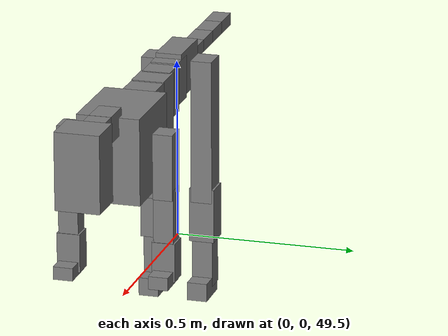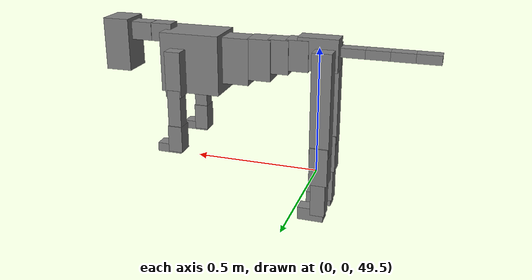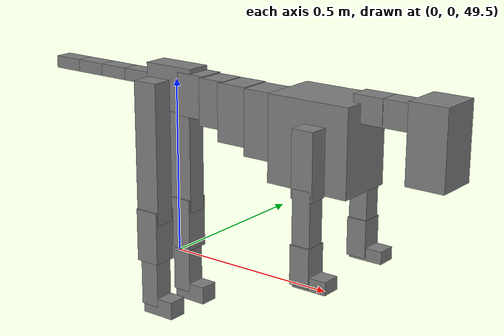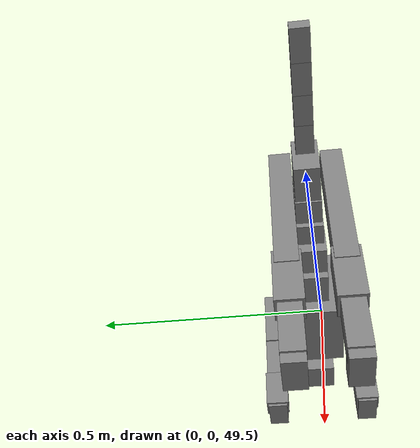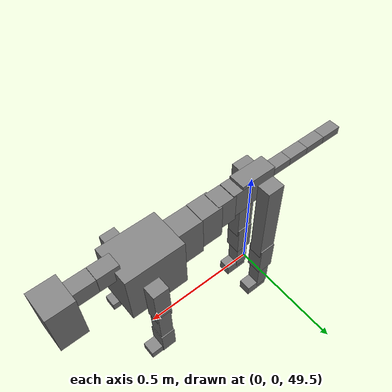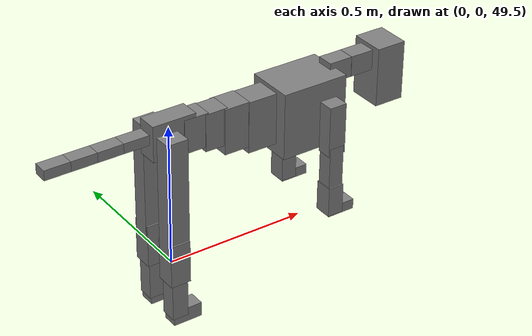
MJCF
<mujoco model="dog">

    <default>
        <joint armature="0.02" stiffness="1" damping="0.2" limited="true"/>
        <geom condim="3" friction="1 0.05 0.05" margin="0.01"/>
        <motor ctrllimited="true" ctrlrange="-1.0 1.0" forcelimited="true" gear="50"/>
    </default>

    <compiler inertiafromgeom="true" angle="radian"/>

    <option timestep="0.016" iterations="50" tolerance="1e-10" solver="Newton" jacobian="dense" cone="pyramidal"/>

    <size nconmax="20000" njmax="60000" nstack="5000000"/>
    <visual>
        <map force="0.1" zfar="30"/>
        <rgba haze="0.15 0.25 0.35 1"/>
        <quality shadowsize="2048"/>
        <global offwidth="800" offheight="800"/>
    </visual>

    <asset>
        <texture type="skybox" builtin="gradient" rgb1="0.3 0.5 0.7" rgb2="0 0 0" width="512" height="512"/>
        <texture name="texplane" type="2d" builtin="checker" rgb1=".2 .3 .4" rgb2=".1 0.15 0.2" width="512" height="512"
                 mark="cross" markrgb=".8 .8 .8"/>
        <texture name="texgeom" type="cube" builtin="flat" mark="cross" width="127" height="1278" rgb1="0.8 0.6 0.4"
                 rgb2="0.8 0.6 0.4" markrgb="1 1 1" random="0.01"/>

        <material name="matplane" reflectance="0.3" texture="texplane" texrepeat="1 1" texuniform="true"/>
        <material name="matgeom" texture="texgeom" texuniform="true" rgba="0.8 0.6 .4 1"/>
    </asset>

    <worldbody>
        <geom name="floor" pos="0 0 0" size="0 0 .25" type="plane" material="matplane" condim="3"/>

        <light directional="false" diffuse=".2 .2 .2" specular="0 0 0" pos="0 0 5" dir="0 0 -1" castshadow="false"/>
        <light mode="targetbodycom" target="torso" directional="false" diffuse=".8 .8 .8" specular="0.3 0.3 0.3"
               pos="0 0 4.0" dir="0 0 -1"/>

        <body name="root" pos="0 0 50">
            <freejoint name="root_1"/>
            <geom type="box" pos="0 0 -0.02" size="0.0774  0.0358  0.063" density="2030"/>

            <body name="spine1" pos="0.054 0 0">
                <joint name="spine1_y" axis="0 1 0" range="0 0.7" limited="true"/>
                <geom type="box" pos="0.02375 0 -0.03" size="0.04375  0.0375  0.05985" density="2030"/>

                <body name="spine2" pos="0.0612 0 0">
                    <joint name="spine2_y" axis="0 1 0" range="-0.15 0.15" limited="true"/>
                    <geom type="box" pos="0.03555  0  -0.04" size="0.04055  0.039  0.06615" density="2030"/>

                    <body name="spine3" pos="0.0730 0 0">
                        <joint name="spine3_y" axis="0 1 0" range="-0.15 0.15" limited="true"/>
                        <geom type="box" pos="0.03555  0  -0.057" size="0.04555  0.0445  0.081" density="2030"/>

                        <body name="spine4" pos="0.0780 0 0">
                            <joint name="spine4_y" axis="0 1 0" range="-0.15 0.15" limited="true"/>
                            <geom type="box" pos="0.05265  0  -0.07" size="0.05265  0.045  0.09135" density="2030"/>

                            <body name="torso" pos="0.1082 0 0">
                                <joint name="torso_y" axis="0 1 0" range="-0.15 0.15" limited="true"/>
                                <geom type="box" pos="0.11925  0  -0.085" size="0.11925  0.085  0.11745"
                                      density="2030"/>

                                <body name="neck1" pos="0.2160  0   0.0180">
                                    <joint name="neck1_y" axis="0 1 0" range="-1.2  -1" limited="true"/>
                                    <geom type="box" pos="0.0423  0  0" size="0.0423  0.03  0.036" density="2325"/>

                                    <body name="neck2" pos="0.0853  0  0">
                                        <joint name="neck2_y" axis="0 1 0" range="0.1  0" limited="true"/>
                                        <geom type="box" pos="0.0423  0  0" size="0.0423  0.03  0.036" density="2325"/>

                                        <body name="head" pos="0.0853  0  0">
                                            <joint name="head_y" axis="0 1 0" range="-0.3  -0.2" limited="true"/>
                                            <geom type="box" pos="0.0531  0  -0.055" size="0.0531  0.06  0.1044"
                                                  density="4030"/>

                                        </body>
                                    </body>
                                </body>

                                <body name="front_shoulder" pos="0.156  0   -0.0480">
                                    <joint name="front_shoulder_y" axis="0 1 0" range="-1 1.5" limited="true"/>
                                    <geom type="box" pos="0 0.13 -0.0625" size="0.0312  0.0267  0.0891" density="1158"/>
                                    <geom type="box" pos="0 -0.13 -0.0625" size="0.0312  0.0267  0.0891"
                                          density="1158"/>

                                    <body name="front_elbow" pos="0  0  -0.1250">
                                        <joint name="front_elbow_y" axis="0 1 0" range="-2 0" limited="true"/>
                                        <geom type="box" pos="0 0.13 -0.0793" size="0.0263  0.0269  0.0793"
                                              density="1081"/>
                                        <geom type="box" pos="0 -0.13 -0.0793" size="0.0263  0.0269  0.0793"
                                              density="1081"/>

                                        <body name="front_wrist" pos="0  0  -0.1586">
                                            <joint name="front_wrist_y" axis="0 1 0" range="-0.2 0" limited="true"/>
                                            <geom type="box" pos="0 0.13 -0.0394" size="0.0283  0.0315  0.0526"
                                                  density="1664"/>
                                            <geom type="box" pos="0 -0.13 -0.0394" size="0.0283  0.0315  0.0526"
                                                  density="1664"/>

                                            <body name="front_finger_end" pos="0  0  -0.0788">
                                                <joint name="front_finger_y" axis="0 1 0" range="-0.4 1"
                                                       limited="true"/>
                                                <geom type="box" pos="0.0268  0.13  -0.0027"
                                                      size="0.0492  0.0268  0.0177" density="1515"/>
                                                <geom type="box" pos="0.0268  -0.13  -0.0027"
                                                      size="0.0492  0.0268  0.0177" density="1515"/>

                                            </body>

                                        </body>
                                    </body>
                                </body>

                            </body>
                        </body>
                    </body>
                </body>
            </body>

            <body name="back_hip" pos="-0.03 0 -0.018">
                <joint name="back_hip_y" axis="0 1 0" range="-1.5 0.3" limited="true"/>
                <geom type="box" pos="0 0.07 -0.1800" size="0.0377  0.0296  0.2028" density="1154"/>
                <geom type="box" pos="0 -0.07 -0.1800" size="0.0377  0.0296  0.2028" density="1154"/>

                <body name="back_knee" pos="0  0  -0.3600">
                    <joint name="back_knee_y" axis="0 1 0" range="0 2.8" limited="true"/>
                    <geom type="box" pos="0 0.07 -0.0606" size="0.0358  0.0353  0.0762" density="1227"/>
                    <geom type="box" pos="0 -0.07 -0.0606" size="0.0358  0.0353  0.0762" density="1227"/>

                    <body name="back_ankle" pos="0  0  -0.1213">
                        <joint name="back_ankle_y" axis="0 1 0" range="-2.2 0" limited="true"/>
                        <geom type="box" pos="0 0.07 -0.0686" size="0.0286  0.0286  0.0798" density="1284"/>
                        <geom type="box" pos="0 -0.07 -0.0686" size="0.0286  0.0286  0.0798" density="1284"/>

                        <body name="back_toe_end" pos="0  0  -0.1372">
                            <joint name="back_toe_y" axis="0 1 0" range="-0.4 1" limited="true"/>
                            <geom type="box" pos="0.0280  0.07  -0.0107" size="0.0513  0.0280  0.0257" density="1515"/>
                            <geom type="box" pos="0.0280  -0.07  -0.0107" size="0.0513  0.0280  0.0257" density="1515"/>

                        </body>
                    </body>
                </body>
            </body>

            <body name="tail1" pos="-0.074 0 -0.006">
                <joint name="tail1_y" axis="0 1 0" range="-0.2 0.2" limited="true"/>
                <geom type="box" pos="-0.0536  0  0" size="0.045  0.025  0.0175" density="1587"/>

                <body name="tail2" pos="-0.09 0 0">
                    <joint name="tail2_y" axis="0 1 0" range="-0.2 0.2" limited="true"/>
                    <geom type="box" pos="-0.0536  0  0" size="0.045  0.025  0.0175" density="1587"/>

                    <body name="tail3" pos="-0.09 0 0">
                        <joint name="tail3_y" axis="0 1 0" range="-0.2 0.2" limited="true"/>
                        <geom type="box" pos="-0.0536  0  0" size="0.045  0.025  0.0175" density="1587"/>

                        <body name="tail4" pos="-0.09 0 0">
                            <joint name="tail4_y" axis="0 1 0" range="-0.2 0.2" limited="true"/>
                            <geom type="box" pos="-0.0536  0  0" size="0.045  0.025  0.0175" density="1587"/>

                        </body>
                    </body>
                </body>
            </body>
        </body>
    </worldbody>

    <actuator>
        <motor joint="spine1_y" forcerange="-150 150     "/>
        <motor joint="spine2_y" forcerange="-150 150     "/>
        <motor joint="spine3_y" forcerange="-150 150     "/>
        <motor joint="spine4_y" forcerange="-150 150     "/>
        <motor joint="torso_y" forcerange="-150 150     "/>
        <motor joint="neck1_y" forcerange="-100 100       "/>
        <motor joint="neck2_y" forcerange="-100 100       "/>
        <motor joint="head_y" forcerange="-150 150       "/>
        <motor joint="front_shoulder_y" forcerange="-153.63 124.34"/>
        <motor joint="front_elbow_y" forcerange="-135.17 160.51"/>
        <motor joint="front_wrist_y" forcerange="-107.67 143.93"/>
        <motor joint="front_finger_y" forcerange="-22.99 80.05"/>
        <motor joint="back_hip_y" forcerange="-292.23 301.91"/>
        <motor joint="back_knee_y" forcerange="-382.41 330.55"/>
        <motor joint="back_angle_y" forcerange="-200.09 158.10"/>
        <motor joint="back_toe_y" forcerange="-78.19 65.48"/>
        <motor joint="tail1_y" forcerange="-50 50     "/>
        <motor joint="tail2_y" forcerange="-50 50     "/>
        <motor joint="tail3_y" forcerange="-50 50     "/>
        <motor joint="tail4_y" forcerange="-50 50     "/>
    </actuator>
</mujoco>
